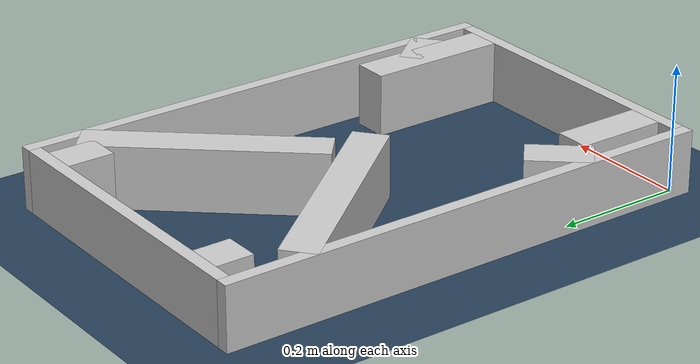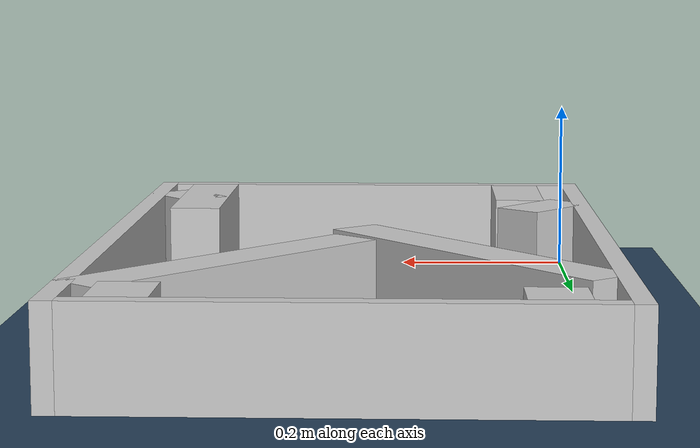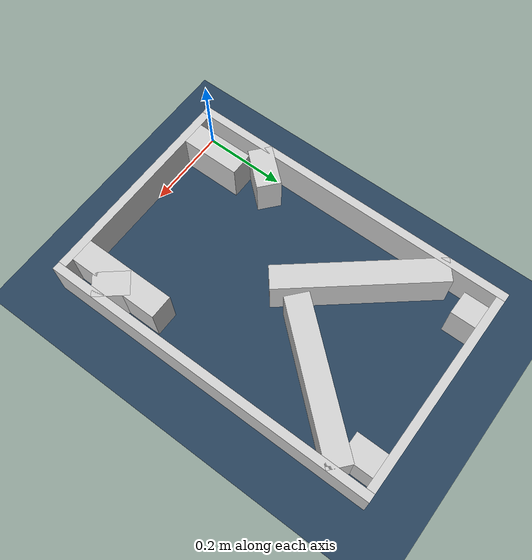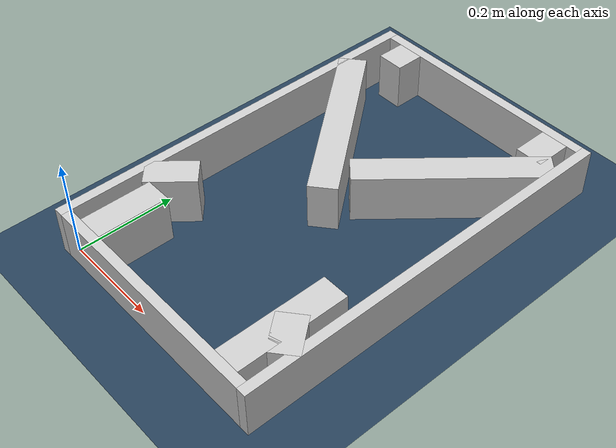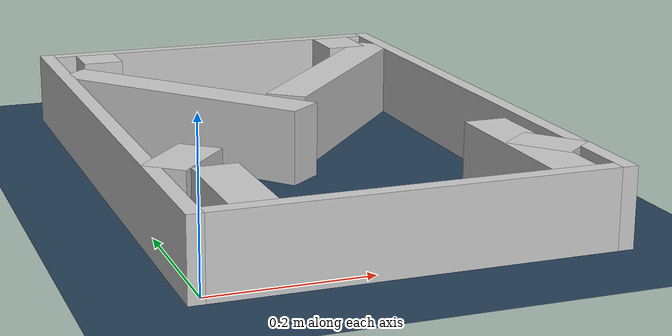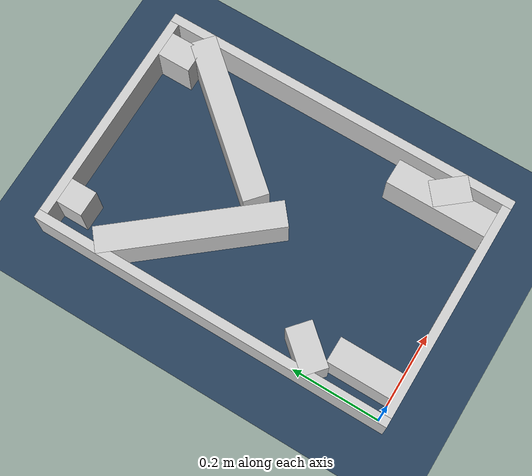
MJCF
<?xml version="1.0" ?>
<mujoco model="generated_real_template">
  <compiler angle="degree"/>
  <option timestep="0.002" integrator="implicitfast" iterations="100" cone="elliptic"/>
  <default>
    <geom density="1"/>
  </default>
  <asset>
    <texture builtin="gradient" height="3072" rgb1="0.3 0.5 0.7" rgb2="0 0 0" type="skybox" width="512"/>
    <texture builtin="checker" height="300" mark="edge" markrgb="0.8 0.8 0.8" name="groundplane" rgb1="0.2 0.3 0.4" rgb2="0.1 0.2 0.3" type="2d" width="300"/>
    <material name="groundplane" reflectance="0.2" texrepeat="5 5" texture="groundplane" texuniform="true"/>
  </asset>
  <worldbody>
    <light dir="0 0 -1" directional="true" pos="0 0 1.5"/>
    <geom name="floor" type="plane" condim="4" friction="0.5 0.005 0.001" material="groundplane" size="0 0 0.05"/>
    <body name="walls">
      <geom name="wall_boundary_left" type="box" condim="4" friction="1.0 0.005 0.0001" rgba="0.8 0.8 0.8 1" pos="-0.010000 0.387500 0.050000" euler="0 0 0.000000" size="0.010000 0.407500 0.050000"/>
      <geom name="wall_boundary_right" type="box" condim="4" friction="1.0 0.005 0.0001" rgba="0.8 0.8 0.8 1" pos="0.500000 0.387500 0.050000" euler="0 0 0.000000" size="0.010000 0.407500 0.050000"/>
      <geom name="wall_boundary_bottom" type="box" condim="4" friction="1.0 0.005 0.0001" rgba="0.8 0.8 0.8 1" pos="0.245000 -0.010000 0.050000" euler="0 0 0.000000" size="0.245000 0.010000 0.050000"/>
      <geom name="wall_boundary_top" type="box" condim="4" friction="1.0 0.005 0.0001" rgba="0.8 0.8 0.8 1" pos="0.245000 0.785000 0.050000" euler="0 0 0.000000" size="0.245000 0.010000 0.050000"/>
      <geom name="wall_inner_1_1" type="box" condim="4" friction="1.0 0.005 0.0001" rgba="0.8 0.8 0.8 1" pos="0.059639 0.071506 0.050000" euler="0 0 90.000000" size="0.071506 0.028500 0.050000"/>
      <geom name="wall_inner_1_2" type="box" condim="4" friction="1.0 0.005 0.0001" rgba="0.8 0.8 0.8 1" pos="0.059639 0.745386 0.050000" euler="0 0 90.000000" size="0.029614 0.028500 0.050000"/>
      <geom name="wall_inner_2_1" type="box" condim="4" friction="1.0 0.005 0.0001" rgba="0.8 0.8 0.8 1" pos="0.461790 0.104090 0.050000" euler="0 0 129.296370" size="0.041294 0.028500 0.050000"/>
      <geom name="wall_inner_2_2" type="box" condim="4" friction="1.0 0.005 0.0001" rgba="0.8 0.8 0.8 1" pos="0.125883 0.514542 0.050000" euler="0 0 129.296370" size="0.195515 0.028500 0.050000"/>
      <geom name="wall_inner_3_1" type="box" condim="4" friction="1.0 0.005 0.0001" rgba="0.8 0.8 0.8 1" pos="0.439644 0.112405 0.050000" euler="0 0 90.000000" size="0.112405 0.028500 0.050000"/>
      <geom name="wall_inner_3_2" type="box" condim="4" friction="1.0 0.005 0.0001" rgba="0.8 0.8 0.8 1" pos="0.439644 0.737897 0.050000" euler="0 0 90.000000" size="0.037103 0.028500 0.050000"/>
      <geom name="wall_inner_4_1" type="box" condim="4" friction="1.0 0.005 0.0001" rgba="0.8 0.8 0.8 1" pos="0.367179 0.573527 0.050000" euler="0 0 -130.852220" size="0.185386 0.028500 0.050000"/>
      <geom name="wall_inner_4_2" type="box" condim="4" friction="1.0 0.005 0.0001" rgba="0.8 0.8 0.8 1" pos="0.034468 0.188787 0.050000" euler="0 0 -130.852220" size="0.050312 0.028500 0.050000"/>
    </body>
  </worldbody>
</mujoco>
